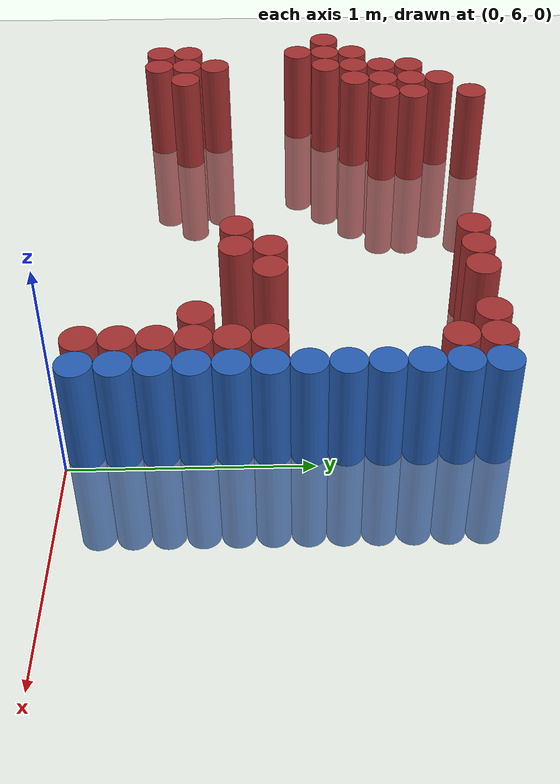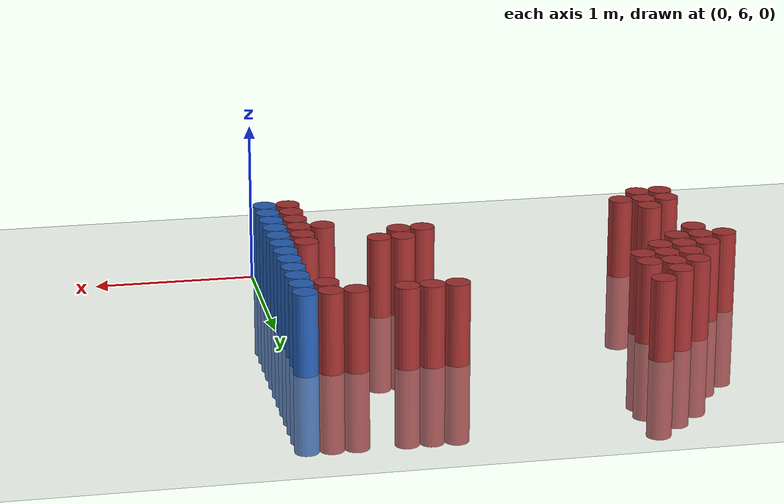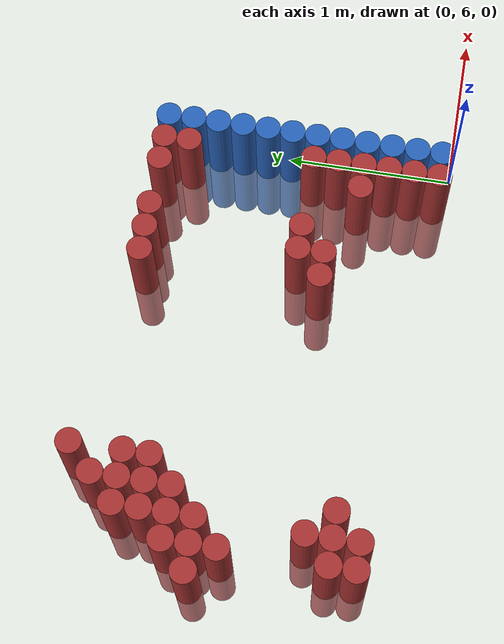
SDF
<sdf version="1.6">
 <world name="default">
  <model name="ground_plane">
   <static>1</static>
   <link name="link">
    <collision name="collision">
     <geometry><plane><normal>0 0 1</normal><size>100 100</size></plane></geometry>
     <surface><friction><ode><mu>100</mu><mu2>50</mu2></ode></friction></surface>
    </collision>
    <visual name="visual">
     <cast_shadows>0</cast_shadows>
     <geometry><plane><normal>0 0 1</normal><size>100 100</size></plane></geometry>
     <material>
      <script><uri>file://media/materials/scripts/gazebo.material</uri><name>Gazebo/Grey</name></script>
     </material>
    </visual>
   </link>
  </model>
  <model name="unit_cylinder_223">
   <static>1</static>
   <pose>-2.775000 7.125000 0.000000 0.000000 0.000000 0.000000</pose>
   <link name="link">
    <inertial>
     <mass>1</mass>
     <inertia><ixx>0.145833</ixx><ixy>0</ixy><ixz>0</ixz><iyy>0.145833</iyy><iyz>0</iyz><izz>0.125</izz></inertia>
    </inertial>
    <collision name="collision">
     <geometry><cylinder><radius>0.075000</radius><length>1</length></cylinder></geometry>
    </collision>
    <visual name="visual">
     <geometry><cylinder><radius>0.075000</radius><length>1</length></cylinder></geometry>
     <material>
      <ambient>0.648000 0.192000 0.192000 1</ambient>
      <diffuse>0.648000 0.192000 0.192000 1</diffuse>
     </material>
     <material>
      <script><name>Gazebo/Grey</name><uri>file://media/materials/scripts/gazebo.material</uri></script>
     </material>
    </visual>
   </link>
  </model>
  <model name="unit_cylinder_224">
   <static>1</static>
   <pose>-2.625000 6.225000 0.000000 0.000000 0.000000 0.000000</pose>
   <link name="link">
    <inertial>
     <mass>1</mass>
     <inertia><ixx>0.145833</ixx><ixy>0</ixy><ixz>0</ixz><iyy>0.145833</iyy><iyz>0</iyz><izz>0.125</izz></inertia>
    </inertial>
    <collision name="collision">
     <geometry><cylinder><radius>0.075000</radius><length>1</length></cylinder></geometry>
    </collision>
    <visual name="visual">
     <geometry><cylinder><radius>0.075000</radius><length>1</length></cylinder></geometry>
     <material>
      <ambient>0.648000 0.192000 0.192000 1</ambient>
      <diffuse>0.648000 0.192000 0.192000 1</diffuse>
     </material>
     <material>
      <script><name>Gazebo/Grey</name><uri>file://media/materials/scripts/gazebo.material</uri></script>
     </material>
    </visual>
   </link>
  </model>
  <model name="unit_cylinder_225">
   <static>1</static>
   <pose>-2.625000 6.375000 0.000000 0.000000 0.000000 0.000000</pose>
   <link name="link">
    <inertial>
     <mass>1</mass>
     <inertia><ixx>0.145833</ixx><ixy>0</ixy><ixz>0</ixz><iyy>0.145833</iyy><iyz>0</iyz><izz>0.125</izz></inertia>
    </inertial>
    <collision name="collision">
     <geometry><cylinder><radius>0.075000</radius><length>1</length></cylinder></geometry>
    </collision>
    <visual name="visual">
     <geometry><cylinder><radius>0.075000</radius><length>1</length></cylinder></geometry>
     <material>
      <ambient>0.648000 0.192000 0.192000 1</ambient>
      <diffuse>0.648000 0.192000 0.192000 1</diffuse>
     </material>
     <material>
      <script><name>Gazebo/Grey</name><uri>file://media/materials/scripts/gazebo.material</uri></script>
     </material>
    </visual>
   </link>
  </model>
  <model name="unit_cylinder_226">
   <static>1</static>
   <pose>-2.625000 6.975000 0.000000 0.000000 0.000000 0.000000</pose>
   <link name="link">
    <inertial>
     <mass>1</mass>
     <inertia><ixx>0.145833</ixx><ixy>0</ixy><ixz>0</ixz><iyy>0.145833</iyy><iyz>0</iyz><izz>0.125</izz></inertia>
    </inertial>
    <collision name="collision">
     <geometry><cylinder><radius>0.075000</radius><length>1</length></cylinder></geometry>
    </collision>
    <visual name="visual">
     <geometry><cylinder><radius>0.075000</radius><length>1</length></cylinder></geometry>
     <material>
      <ambient>0.648000 0.192000 0.192000 1</ambient>
      <diffuse>0.648000 0.192000 0.192000 1</diffuse>
     </material>
     <material>
      <script><name>Gazebo/Grey</name><uri>file://media/materials/scripts/gazebo.material</uri></script>
     </material>
    </visual>
   </link>
  </model>
  <model name="unit_cylinder_227">
   <static>1</static>
   <pose>-2.625000 7.125000 0.000000 0.000000 0.000000 0.000000</pose>
   <link name="link">
    <inertial>
     <mass>1</mass>
     <inertia><ixx>0.145833</ixx><ixy>0</ixy><ixz>0</ixz><iyy>0.145833</iyy><iyz>0</iyz><izz>0.125</izz></inertia>
    </inertial>
    <collision name="collision">
     <geometry><cylinder><radius>0.075000</radius><length>1</length></cylinder></geometry>
    </collision>
    <visual name="visual">
     <geometry><cylinder><radius>0.075000</radius><length>1</length></cylinder></geometry>
     <material>
      <ambient>0.648000 0.192000 0.192000 1</ambient>
      <diffuse>0.648000 0.192000 0.192000 1</diffuse>
     </material>
     <material>
      <script><name>Gazebo/Grey</name><uri>file://media/materials/scripts/gazebo.material</uri></script>
     </material>
    </visual>
   </link>
  </model>
  <model name="unit_cylinder_228">
   <static>1</static>
   <pose>-2.625000 7.275000 0.000000 0.000000 0.000000 0.000000</pose>
   <link name="link">
    <inertial>
     <mass>1</mass>
     <inertia><ixx>0.145833</ixx><ixy>0</ixy><ixz>0</ixz><iyy>0.145833</iyy><iyz>0</iyz><izz>0.125</izz></inertia>
    </inertial>
    <collision name="collision">
     <geometry><cylinder><radius>0.075000</radius><length>1</length></cylinder></geometry>
    </collision>
    <visual name="visual">
     <geometry><cylinder><radius>0.075000</radius><length>1</length></cylinder></geometry>
     <material>
      <ambient>0.648000 0.192000 0.192000 1</ambient>
      <diffuse>0.648000 0.192000 0.192000 1</diffuse>
     </material>
     <material>
      <script><name>Gazebo/Grey</name><uri>file://media/materials/scripts/gazebo.material</uri></script>
     </material>
    </visual>
   </link>
  </model>
  <model name="unit_cylinder_230">
   <static>1</static>
   <pose>-2.475000 6.225000 0.000000 0.000000 0.000000 0.000000</pose>
   <link name="link">
    <inertial>
     <mass>1</mass>
     <inertia><ixx>0.145833</ixx><ixy>0</ixy><ixz>0</ixz><iyy>0.145833</iyy><iyz>0</iyz><izz>0.125</izz></inertia>
    </inertial>
    <collision name="collision">
     <geometry><cylinder><radius>0.075000</radius><length>1</length></cylinder></geometry>
    </collision>
    <visual name="visual">
     <geometry><cylinder><radius>0.075000</radius><length>1</length></cylinder></geometry>
     <material>
      <ambient>0.648000 0.192000 0.192000 1</ambient>
      <diffuse>0.648000 0.192000 0.192000 1</diffuse>
     </material>
     <material>
      <script><name>Gazebo/Grey</name><uri>file://media/materials/scripts/gazebo.material</uri></script>
     </material>
    </visual>
   </link>
  </model>
  <model name="unit_cylinder_231">
   <static>1</static>
   <pose>-2.475000 6.375000 0.000000 0.000000 0.000000 0.000000</pose>
   <link name="link">
    <inertial>
     <mass>1</mass>
     <inertia><ixx>0.145833</ixx><ixy>0</ixy><ixz>0</ixz><iyy>0.145833</iyy><iyz>0</iyz><izz>0.125</izz></inertia>
    </inertial>
    <collision name="collision">
     <geometry><cylinder><radius>0.075000</radius><length>1</length></cylinder></geometry>
    </collision>
    <visual name="visual">
     <geometry><cylinder><radius>0.075000</radius><length>1</length></cylinder></geometry>
     <material>
      <ambient>0.648000 0.192000 0.192000 1</ambient>
      <diffuse>0.648000 0.192000 0.192000 1</diffuse>
     </material>
     <material>
      <script><name>Gazebo/Grey</name><uri>file://media/materials/scripts/gazebo.material</uri></script>
     </material>
    </visual>
   </link>
  </model>
  <model name="unit_cylinder_232">
   <static>1</static>
   <pose>-2.475000 6.525000 0.000000 0.000000 0.000000 0.000000</pose>
   <link name="link">
    <inertial>
     <mass>1</mass>
     <inertia><ixx>0.145833</ixx><ixy>0</ixy><ixz>0</ixz><iyy>0.145833</iyy><iyz>0</iyz><izz>0.125</izz></inertia>
    </inertial>
    <collision name="collision">
     <geometry><cylinder><radius>0.075000</radius><length>1</length></cylinder></geometry>
    </collision>
    <visual name="visual">
     <geometry><cylinder><radius>0.075000</radius><length>1</length></cylinder></geometry>
     <material>
      <ambient>0.648000 0.192000 0.192000 1</ambient>
      <diffuse>0.648000 0.192000 0.192000 1</diffuse>
     </material>
     <material>
      <script><name>Gazebo/Grey</name><uri>file://media/materials/scripts/gazebo.material</uri></script>
     </material>
    </visual>
   </link>
  </model>
  <model name="unit_cylinder_233">
   <static>1</static>
   <pose>-2.475000 7.125000 0.000000 0.000000 0.000000 0.000000</pose>
   <link name="link">
    <inertial>
     <mass>1</mass>
     <inertia><ixx>0.145833</ixx><ixy>0</ixy><ixz>0</ixz><iyy>0.145833</iyy><iyz>0</iyz><izz>0.125</izz></inertia>
    </inertial>
    <collision name="collision">
     <geometry><cylinder><radius>0.075000</radius><length>1</length></cylinder></geometry>
    </collision>
    <visual name="visual">
     <geometry><cylinder><radius>0.075000</radius><length>1</length></cylinder></geometry>
     <material>
      <ambient>0.648000 0.192000 0.192000 1</ambient>
      <diffuse>0.648000 0.192000 0.192000 1</diffuse>
     </material>
     <material>
      <script><name>Gazebo/Grey</name><uri>file://media/materials/scripts/gazebo.material</uri></script>
     </material>
    </visual>
   </link>
  </model>
  <model name="unit_cylinder_234">
   <static>1</static>
   <pose>-2.475000 7.275000 0.000000 0.000000 0.000000 0.000000</pose>
   <link name="link">
    <inertial>
     <mass>1</mass>
     <inertia><ixx>0.145833</ixx><ixy>0</ixy><ixz>0</ixz><iyy>0.145833</iyy><iyz>0</iyz><izz>0.125</izz></inertia>
    </inertial>
    <collision name="collision">
     <geometry><cylinder><radius>0.075000</radius><length>1</length></cylinder></geometry>
    </collision>
    <visual name="visual">
     <geometry><cylinder><radius>0.075000</radius><length>1</length></cylinder></geometry>
     <material>
      <ambient>0.648000 0.192000 0.192000 1</ambient>
      <diffuse>0.648000 0.192000 0.192000 1</diffuse>
     </material>
     <material>
      <script><name>Gazebo/Grey</name><uri>file://media/materials/scripts/gazebo.material</uri></script>
     </material>
    </visual>
   </link>
  </model>
  <model name="unit_cylinder_235">
   <static>1</static>
   <pose>-2.475000 7.425000 0.000000 0.000000 0.000000 0.000000</pose>
   <link name="link">
    <inertial>
     <mass>1</mass>
     <inertia><ixx>0.145833</ixx><ixy>0</ixy><ixz>0</ixz><iyy>0.145833</iyy><iyz>0</iyz><izz>0.125</izz></inertia>
    </inertial>
    <collision name="collision">
     <geometry><cylinder><radius>0.075000</radius><length>1</length></cylinder></geometry>
    </collision>
    <visual name="visual">
     <geometry><cylinder><radius>0.075000</radius><length>1</length></cylinder></geometry>
     <material>
      <ambient>0.648000 0.192000 0.192000 1</ambient>
      <diffuse>0.648000 0.192000 0.192000 1</diffuse>
     </material>
     <material>
      <script><name>Gazebo/Grey</name><uri>file://media/materials/scripts/gazebo.material</uri></script>
     </material>
    </visual>
   </link>
  </model>
  <model name="unit_cylinder_236">
   <static>1</static>
   <pose>-2.475000 7.575000 0.000000 0.000000 0.000000 0.000000</pose>
   <link name="link">
    <inertial>
     <mass>1</mass>
     <inertia><ixx>0.145833</ixx><ixy>0</ixy><ixz>0</ixz><iyy>0.145833</iyy><iyz>0</iyz><izz>0.125</izz></inertia>
    </inertial>
    <collision name="collision">
     <geometry><cylinder><radius>0.075000</radius><length>1</length></cylinder></geometry>
    </collision>
    <visual name="visual">
     <geometry><cylinder><radius>0.075000</radius><length>1</length></cylinder></geometry>
     <material>
      <ambient>0.648000 0.192000 0.192000 1</ambient>
      <diffuse>0.648000 0.192000 0.192000 1</diffuse>
     </material>
     <material>
      <script><name>Gazebo/Grey</name><uri>file://media/materials/scripts/gazebo.material</uri></script>
     </material>
    </visual>
   </link>
  </model>
  <model name="unit_cylinder_239">
   <static>1</static>
   <pose>-2.325000 6.375000 0.000000 0.000000 0.000000 0.000000</pose>
   <link name="link">
    <inertial>
     <mass>1</mass>
     <inertia><ixx>0.145833</ixx><ixy>0</ixy><ixz>0</ixz><iyy>0.145833</iyy><iyz>0</iyz><izz>0.125</izz></inertia>
    </inertial>
    <collision name="collision">
     <geometry><cylinder><radius>0.075000</radius><length>1</length></cylinder></geometry>
    </collision>
    <visual name="visual">
     <geometry><cylinder><radius>0.075000</radius><length>1</length></cylinder></geometry>
     <material>
      <ambient>0.648000 0.192000 0.192000 1</ambient>
      <diffuse>0.648000 0.192000 0.192000 1</diffuse>
     </material>
     <material>
      <script><name>Gazebo/Grey</name><uri>file://media/materials/scripts/gazebo.material</uri></script>
     </material>
    </visual>
   </link>
  </model>
  <model name="unit_cylinder_240">
   <static>1</static>
   <pose>-2.325000 7.275000 0.000000 0.000000 0.000000 0.000000</pose>
   <link name="link">
    <inertial>
     <mass>1</mass>
     <inertia><ixx>0.145833</ixx><ixy>0</ixy><ixz>0</ixz><iyy>0.145833</iyy><iyz>0</iyz><izz>0.125</izz></inertia>
    </inertial>
    <collision name="collision">
     <geometry><cylinder><radius>0.075000</radius><length>1</length></cylinder></geometry>
    </collision>
    <visual name="visual">
     <geometry><cylinder><radius>0.075000</radius><length>1</length></cylinder></geometry>
     <material>
      <ambient>0.648000 0.192000 0.192000 1</ambient>
      <diffuse>0.648000 0.192000 0.192000 1</diffuse>
     </material>
     <material>
      <script><name>Gazebo/Grey</name><uri>file://media/materials/scripts/gazebo.material</uri></script>
     </material>
    </visual>
   </link>
  </model>
  <model name="unit_cylinder_241">
   <static>1</static>
   <pose>-2.325000 7.425000 0.000000 0.000000 0.000000 0.000000</pose>
   <link name="link">
    <inertial>
     <mass>1</mass>
     <inertia><ixx>0.145833</ixx><ixy>0</ixy><ixz>0</ixz><iyy>0.145833</iyy><iyz>0</iyz><izz>0.125</izz></inertia>
    </inertial>
    <collision name="collision">
     <geometry><cylinder><radius>0.075000</radius><length>1</length></cylinder></geometry>
    </collision>
    <visual name="visual">
     <geometry><cylinder><radius>0.075000</radius><length>1</length></cylinder></geometry>
     <material>
      <ambient>0.648000 0.192000 0.192000 1</ambient>
      <diffuse>0.648000 0.192000 0.192000 1</diffuse>
     </material>
     <material>
      <script><name>Gazebo/Grey</name><uri>file://media/materials/scripts/gazebo.material</uri></script>
     </material>
    </visual>
   </link>
  </model>
  <model name="unit_cylinder_242">
   <static>1</static>
   <pose>-2.325000 7.575000 0.000000 0.000000 0.000000 0.000000</pose>
   <link name="link">
    <inertial>
     <mass>1</mass>
     <inertia><ixx>0.145833</ixx><ixy>0</ixy><ixz>0</ixz><iyy>0.145833</iyy><iyz>0</iyz><izz>0.125</izz></inertia>
    </inertial>
    <collision name="collision">
     <geometry><cylinder><radius>0.075000</radius><length>1</length></cylinder></geometry>
    </collision>
    <visual name="visual">
     <geometry><cylinder><radius>0.075000</radius><length>1</length></cylinder></geometry>
     <material>
      <ambient>0.648000 0.192000 0.192000 1</ambient>
      <diffuse>0.648000 0.192000 0.192000 1</diffuse>
     </material>
     <material>
      <script><name>Gazebo/Grey</name><uri>file://media/materials/scripts/gazebo.material</uri></script>
     </material>
    </visual>
   </link>
  </model>
  <model name="unit_cylinder_243">
   <static>1</static>
   <pose>-2.325000 7.725000 0.000000 0.000000 0.000000 0.000000</pose>
   <link name="link">
    <inertial>
     <mass>1</mass>
     <inertia><ixx>0.145833</ixx><ixy>0</ixy><ixz>0</ixz><iyy>0.145833</iyy><iyz>0</iyz><izz>0.125</izz></inertia>
    </inertial>
    <collision name="collision">
     <geometry><cylinder><radius>0.075000</radius><length>1</length></cylinder></geometry>
    </collision>
    <visual name="visual">
     <geometry><cylinder><radius>0.075000</radius><length>1</length></cylinder></geometry>
     <material>
      <ambient>0.648000 0.192000 0.192000 1</ambient>
      <diffuse>0.648000 0.192000 0.192000 1</diffuse>
     </material>
     <material>
      <script><name>Gazebo/Grey</name><uri>file://media/materials/scripts/gazebo.material</uri></script>
     </material>
    </visual>
   </link>
  </model>
  <model name="unit_cylinder_248">
   <static>1</static>
   <pose>-2.175000 7.425000 0.000000 0.000000 0.000000 0.000000</pose>
   <link name="link">
    <inertial>
     <mass>1</mass>
     <inertia><ixx>0.145833</ixx><ixy>0</ixy><ixz>0</ixz><iyy>0.145833</iyy><iyz>0</iyz><izz>0.125</izz></inertia>
    </inertial>
    <collision name="collision">
     <geometry><cylinder><radius>0.075000</radius><length>1</length></cylinder></geometry>
    </collision>
    <visual name="visual">
     <geometry><cylinder><radius>0.075000</radius><length>1</length></cylinder></geometry>
     <material>
      <ambient>0.648000 0.192000 0.192000 1</ambient>
      <diffuse>0.648000 0.192000 0.192000 1</diffuse>
     </material>
     <material>
      <script><name>Gazebo/Grey</name><uri>file://media/materials/scripts/gazebo.material</uri></script>
     </material>
    </visual>
   </link>
  </model>
  <model name="unit_cylinder_249">
   <static>1</static>
   <pose>-2.175000 7.575000 0.000000 0.000000 0.000000 0.000000</pose>
   <link name="link">
    <inertial>
     <mass>1</mass>
     <inertia><ixx>0.145833</ixx><ixy>0</ixy><ixz>0</ixz><iyy>0.145833</iyy><iyz>0</iyz><izz>0.125</izz></inertia>
    </inertial>
    <collision name="collision">
     <geometry><cylinder><radius>0.075000</radius><length>1</length></cylinder></geometry>
    </collision>
    <visual name="visual">
     <geometry><cylinder><radius>0.075000</radius><length>1</length></cylinder></geometry>
     <material>
      <ambient>0.648000 0.192000 0.192000 1</ambient>
      <diffuse>0.648000 0.192000 0.192000 1</diffuse>
     </material>
     <material>
      <script><name>Gazebo/Grey</name><uri>file://media/materials/scripts/gazebo.material</uri></script>
     </material>
    </visual>
   </link>
  </model>
  <model name="unit_cylinder_250">
   <static>1</static>
   <pose>-2.175000 7.875000 0.000000 0.000000 0.000000 0.000000</pose>
   <link name="link">
    <inertial>
     <mass>1</mass>
     <inertia><ixx>0.145833</ixx><ixy>0</ixy><ixz>0</ixz><iyy>0.145833</iyy><iyz>0</iyz><izz>0.125</izz></inertia>
    </inertial>
    <collision name="collision">
     <geometry><cylinder><radius>0.075000</radius><length>1</length></cylinder></geometry>
    </collision>
    <visual name="visual">
     <geometry><cylinder><radius>0.075000</radius><length>1</length></cylinder></geometry>
     <material>
      <ambient>0.648000 0.192000 0.192000 1</ambient>
      <diffuse>0.648000 0.192000 0.192000 1</diffuse>
     </material>
     <material>
      <script><name>Gazebo/Grey</name><uri>file://media/materials/scripts/gazebo.material</uri></script>
     </material>
    </visual>
   </link>
  </model>
  <model name="unit_cylinder_271">
   <static>1</static>
   <pose>-0.975000 6.675000 0.000000 0.000000 0.000000 0.000000</pose>
   <link name="link">
    <inertial>
     <mass>1</mass>
     <inertia><ixx>0.145833</ixx><ixy>0</ixy><ixz>0</ixz><iyy>0.145833</iyy><iyz>0</iyz><izz>0.125</izz></inertia>
    </inertial>
    <collision name="collision">
     <geometry><cylinder><radius>0.075000</radius><length>1</length></cylinder></geometry>
    </collision>
    <visual name="visual">
     <geometry><cylinder><radius>0.075000</radius><length>1</length></cylinder></geometry>
     <material>
      <ambient>0.648000 0.192000 0.192000 1</ambient>
      <diffuse>0.648000 0.192000 0.192000 1</diffuse>
     </material>
     <material>
      <script><name>Gazebo/Grey</name><uri>file://media/materials/scripts/gazebo.material</uri></script>
     </material>
    </visual>
   </link>
  </model>
  <model name="unit_cylinder_272">
   <static>1</static>
   <pose>-0.975000 7.725000 0.000000 0.000000 0.000000 0.000000</pose>
   <link name="link">
    <inertial>
     <mass>1</mass>
     <inertia><ixx>0.145833</ixx><ixy>0</ixy><ixz>0</ixz><iyy>0.145833</iyy><iyz>0</iyz><izz>0.125</izz></inertia>
    </inertial>
    <collision name="collision">
     <geometry><cylinder><radius>0.075000</radius><length>1</length></cylinder></geometry>
    </collision>
    <visual name="visual">
     <geometry><cylinder><radius>0.075000</radius><length>1</length></cylinder></geometry>
     <material>
      <ambient>0.648000 0.192000 0.192000 1</ambient>
      <diffuse>0.648000 0.192000 0.192000 1</diffuse>
     </material>
     <material>
      <script><name>Gazebo/Grey</name><uri>file://media/materials/scripts/gazebo.material</uri></script>
     </material>
    </visual>
   </link>
  </model>
  <model name="unit_cylinder_276">
   <static>1</static>
   <pose>-0.825000 6.675000 0.000000 0.000000 0.000000 0.000000</pose>
   <link name="link">
    <inertial>
     <mass>1</mass>
     <inertia><ixx>0.145833</ixx><ixy>0</ixy><ixz>0</ixz><iyy>0.145833</iyy><iyz>0</iyz><izz>0.125</izz></inertia>
    </inertial>
    <collision name="collision">
     <geometry><cylinder><radius>0.075000</radius><length>1</length></cylinder></geometry>
    </collision>
    <visual name="visual">
     <geometry><cylinder><radius>0.075000</radius><length>1</length></cylinder></geometry>
     <material>
      <ambient>0.648000 0.192000 0.192000 1</ambient>
      <diffuse>0.648000 0.192000 0.192000 1</diffuse>
     </material>
     <material>
      <script><name>Gazebo/Grey</name><uri>file://media/materials/scripts/gazebo.material</uri></script>
     </material>
    </visual>
   </link>
  </model>
  <model name="unit_cylinder_277">
   <static>1</static>
   <pose>-0.825000 6.825000 0.000000 0.000000 0.000000 0.000000</pose>
   <link name="link">
    <inertial>
     <mass>1</mass>
     <inertia><ixx>0.145833</ixx><ixy>0</ixy><ixz>0</ixz><iyy>0.145833</iyy><iyz>0</iyz><izz>0.125</izz></inertia>
    </inertial>
    <collision name="collision">
     <geometry><cylinder><radius>0.075000</radius><length>1</length></cylinder></geometry>
    </collision>
    <visual name="visual">
     <geometry><cylinder><radius>0.075000</radius><length>1</length></cylinder></geometry>
     <material>
      <ambient>0.648000 0.192000 0.192000 1</ambient>
      <diffuse>0.648000 0.192000 0.192000 1</diffuse>
     </material>
     <material>
      <script><name>Gazebo/Grey</name><uri>file://media/materials/scripts/gazebo.material</uri></script>
     </material>
    </visual>
   </link>
  </model>
  <model name="unit_cylinder_278">
   <static>1</static>
   <pose>-0.825000 7.725000 0.000000 0.000000 0.000000 0.000000</pose>
   <link name="link">
    <inertial>
     <mass>1</mass>
     <inertia><ixx>0.145833</ixx><ixy>0</ixy><ixz>0</ixz><iyy>0.145833</iyy><iyz>0</iyz><izz>0.125</izz></inertia>
    </inertial>
    <collision name="collision">
     <geometry><cylinder><radius>0.075000</radius><length>1</length></cylinder></geometry>
    </collision>
    <visual name="visual">
     <geometry><cylinder><radius>0.075000</radius><length>1</length></cylinder></geometry>
     <material>
      <ambient>0.648000 0.192000 0.192000 1</ambient>
      <diffuse>0.648000 0.192000 0.192000 1</diffuse>
     </material>
     <material>
      <script><name>Gazebo/Grey</name><uri>file://media/materials/scripts/gazebo.material</uri></script>
     </material>
    </visual>
   </link>
  </model>
  <model name="unit_cylinder_282">
   <static>1</static>
   <pose>-0.675000 6.825000 0.000000 0.000000 0.000000 0.000000</pose>
   <link name="link">
    <inertial>
     <mass>1</mass>
     <inertia><ixx>0.145833</ixx><ixy>0</ixy><ixz>0</ixz><iyy>0.145833</iyy><iyz>0</iyz><izz>0.125</izz></inertia>
    </inertial>
    <collision name="collision">
     <geometry><cylinder><radius>0.075000</radius><length>1</length></cylinder></geometry>
    </collision>
    <visual name="visual">
     <geometry><cylinder><radius>0.075000</radius><length>1</length></cylinder></geometry>
     <material>
      <ambient>0.648000 0.192000 0.192000 1</ambient>
      <diffuse>0.648000 0.192000 0.192000 1</diffuse>
     </material>
     <material>
      <script><name>Gazebo/Grey</name><uri>file://media/materials/scripts/gazebo.material</uri></script>
     </material>
    </visual>
   </link>
  </model>
  <model name="unit_cylinder_283">
   <static>1</static>
   <pose>-0.675000 7.725000 0.000000 0.000000 0.000000 0.000000</pose>
   <link name="link">
    <inertial>
     <mass>1</mass>
     <inertia><ixx>0.145833</ixx><ixy>0</ixy><ixz>0</ixz><iyy>0.145833</iyy><iyz>0</iyz><izz>0.125</izz></inertia>
    </inertial>
    <collision name="collision">
     <geometry><cylinder><radius>0.075000</radius><length>1</length></cylinder></geometry>
    </collision>
    <visual name="visual">
     <geometry><cylinder><radius>0.075000</radius><length>1</length></cylinder></geometry>
     <material>
      <ambient>0.648000 0.192000 0.192000 1</ambient>
      <diffuse>0.648000 0.192000 0.192000 1</diffuse>
     </material>
     <material>
      <script><name>Gazebo/Grey</name><uri>file://media/materials/scripts/gazebo.material</uri></script>
     </material>
    </visual>
   </link>
  </model>
  <model name="unit_cylinder_299">
   <static>1</static>
   <pose>-0.375000 6.525000 0.000000 0.000000 0.000000 0.000000</pose>
   <link name="link">
    <inertial>
     <mass>1</mass>
     <inertia><ixx>0.145833</ixx><ixy>0</ixy><ixz>0</ixz><iyy>0.145833</iyy><iyz>0</iyz><izz>0.125</izz></inertia>
    </inertial>
    <collision name="collision">
     <geometry><cylinder><radius>0.075000</radius><length>1</length></cylinder></geometry>
    </collision>
    <visual name="visual">
     <geometry><cylinder><radius>0.075000</radius><length>1</length></cylinder></geometry>
     <material>
      <ambient>0.648000 0.192000 0.192000 1</ambient>
      <diffuse>0.648000 0.192000 0.192000 1</diffuse>
     </material>
     <material>
      <script><name>Gazebo/Grey</name><uri>file://media/materials/scripts/gazebo.material</uri></script>
     </material>
    </visual>
   </link>
  </model>
  <model name="unit_cylinder_300">
   <static>1</static>
   <pose>-0.375000 7.725000 0.000000 0.000000 0.000000 0.000000</pose>
   <link name="link">
    <inertial>
     <mass>1</mass>
     <inertia><ixx>0.145833</ixx><ixy>0</ixy><ixz>0</ixz><iyy>0.145833</iyy><iyz>0</iyz><izz>0.125</izz></inertia>
    </inertial>
    <collision name="collision">
     <geometry><cylinder><radius>0.075000</radius><length>1</length></cylinder></geometry>
    </collision>
    <visual name="visual">
     <geometry><cylinder><radius>0.075000</radius><length>1</length></cylinder></geometry>
     <material>
      <ambient>0.648000 0.192000 0.192000 1</ambient>
      <diffuse>0.648000 0.192000 0.192000 1</diffuse>
     </material>
     <material>
      <script><name>Gazebo/Grey</name><uri>file://media/materials/scripts/gazebo.material</uri></script>
     </material>
    </visual>
   </link>
  </model>
  <model name="unit_cylinder_306">
   <static>1</static>
   <pose>-0.225000 6.075000 0.000000 0.000000 0.000000 0.000000</pose>
   <link name="link">
    <inertial>
     <mass>1</mass>
     <inertia><ixx>0.145833</ixx><ixy>0</ixy><ixz>0</ixz><iyy>0.145833</iyy><iyz>0</iyz><izz>0.125</izz></inertia>
    </inertial>
    <collision name="collision">
     <geometry><cylinder><radius>0.075000</radius><length>1</length></cylinder></geometry>
    </collision>
    <visual name="visual">
     <geometry><cylinder><radius>0.075000</radius><length>1</length></cylinder></geometry>
     <material>
      <ambient>0.648000 0.192000 0.192000 1</ambient>
      <diffuse>0.648000 0.192000 0.192000 1</diffuse>
     </material>
     <material>
      <script><name>Gazebo/Grey</name><uri>file://media/materials/scripts/gazebo.material</uri></script>
     </material>
    </visual>
   </link>
  </model>
  <model name="unit_cylinder_307">
   <static>1</static>
   <pose>-0.225000 6.225000 0.000000 0.000000 0.000000 0.000000</pose>
   <link name="link">
    <inertial>
     <mass>1</mass>
     <inertia><ixx>0.145833</ixx><ixy>0</ixy><ixz>0</ixz><iyy>0.145833</iyy><iyz>0</iyz><izz>0.125</izz></inertia>
    </inertial>
    <collision name="collision">
     <geometry><cylinder><radius>0.075000</radius><length>1</length></cylinder></geometry>
    </collision>
    <visual name="visual">
     <geometry><cylinder><radius>0.075000</radius><length>1</length></cylinder></geometry>
     <material>
      <ambient>0.648000 0.192000 0.192000 1</ambient>
      <diffuse>0.648000 0.192000 0.192000 1</diffuse>
     </material>
     <material>
      <script><name>Gazebo/Grey</name><uri>file://media/materials/scripts/gazebo.material</uri></script>
     </material>
    </visual>
   </link>
  </model>
  <model name="unit_cylinder_308">
   <static>1</static>
   <pose>-0.225000 6.375000 0.000000 0.000000 0.000000 0.000000</pose>
   <link name="link">
    <inertial>
     <mass>1</mass>
     <inertia><ixx>0.145833</ixx><ixy>0</ixy><ixz>0</ixz><iyy>0.145833</iyy><iyz>0</iyz><izz>0.125</izz></inertia>
    </inertial>
    <collision name="collision">
     <geometry><cylinder><radius>0.075000</radius><length>1</length></cylinder></geometry>
    </collision>
    <visual name="visual">
     <geometry><cylinder><radius>0.075000</radius><length>1</length></cylinder></geometry>
     <material>
      <ambient>0.648000 0.192000 0.192000 1</ambient>
      <diffuse>0.648000 0.192000 0.192000 1</diffuse>
     </material>
     <material>
      <script><name>Gazebo/Grey</name><uri>file://media/materials/scripts/gazebo.material</uri></script>
     </material>
    </visual>
   </link>
  </model>
  <model name="unit_cylinder_309">
   <static>1</static>
   <pose>-0.225000 6.525000 0.000000 0.000000 0.000000 0.000000</pose>
   <link name="link">
    <inertial>
     <mass>1</mass>
     <inertia><ixx>0.145833</ixx><ixy>0</ixy><ixz>0</ixz><iyy>0.145833</iyy><iyz>0</iyz><izz>0.125</izz></inertia>
    </inertial>
    <collision name="collision">
     <geometry><cylinder><radius>0.075000</radius><length>1</length></cylinder></geometry>
    </collision>
    <visual name="visual">
     <geometry><cylinder><radius>0.075000</radius><length>1</length></cylinder></geometry>
     <material>
      <ambient>0.648000 0.192000 0.192000 1</ambient>
      <diffuse>0.648000 0.192000 0.192000 1</diffuse>
     </material>
     <material>
      <script><name>Gazebo/Grey</name><uri>file://media/materials/scripts/gazebo.material</uri></script>
     </material>
    </visual>
   </link>
  </model>
  <model name="unit_cylinder_310">
   <static>1</static>
   <pose>-0.225000 6.675000 0.000000 0.000000 0.000000 0.000000</pose>
   <link name="link">
    <inertial>
     <mass>1</mass>
     <inertia><ixx>0.145833</ixx><ixy>0</ixy><ixz>0</ixz><iyy>0.145833</iyy><iyz>0</iyz><izz>0.125</izz></inertia>
    </inertial>
    <collision name="collision">
     <geometry><cylinder><radius>0.075000</radius><length>1</length></cylinder></geometry>
    </collision>
    <visual name="visual">
     <geometry><cylinder><radius>0.075000</radius><length>1</length></cylinder></geometry>
     <material>
      <ambient>0.648000 0.192000 0.192000 1</ambient>
      <diffuse>0.648000 0.192000 0.192000 1</diffuse>
     </material>
     <material>
      <script><name>Gazebo/Grey</name><uri>file://media/materials/scripts/gazebo.material</uri></script>
     </material>
    </visual>
   </link>
  </model>
  <model name="unit_cylinder_311">
   <static>1</static>
   <pose>-0.225000 6.825000 0.000000 0.000000 0.000000 0.000000</pose>
   <link name="link">
    <inertial>
     <mass>1</mass>
     <inertia><ixx>0.145833</ixx><ixy>0</ixy><ixz>0</ixz><iyy>0.145833</iyy><iyz>0</iyz><izz>0.125</izz></inertia>
    </inertial>
    <collision name="collision">
     <geometry><cylinder><radius>0.075000</radius><length>1</length></cylinder></geometry>
    </collision>
    <visual name="visual">
     <geometry><cylinder><radius>0.075000</radius><length>1</length></cylinder></geometry>
     <material>
      <ambient>0.648000 0.192000 0.192000 1</ambient>
      <diffuse>0.648000 0.192000 0.192000 1</diffuse>
     </material>
     <material>
      <script><name>Gazebo/Grey</name><uri>file://media/materials/scripts/gazebo.material</uri></script>
     </material>
    </visual>
   </link>
  </model>
  <model name="unit_cylinder_312">
   <static>1</static>
   <pose>-0.225000 7.575000 0.000000 0.000000 0.000000 0.000000</pose>
   <link name="link">
    <inertial>
     <mass>1</mass>
     <inertia><ixx>0.145833</ixx><ixy>0</ixy><ixz>0</ixz><iyy>0.145833</iyy><iyz>0</iyz><izz>0.125</izz></inertia>
    </inertial>
    <collision name="collision">
     <geometry><cylinder><radius>0.075000</radius><length>1</length></cylinder></geometry>
    </collision>
    <visual name="visual">
     <geometry><cylinder><radius>0.075000</radius><length>1</length></cylinder></geometry>
     <material>
      <ambient>0.648000 0.192000 0.192000 1</ambient>
      <diffuse>0.648000 0.192000 0.192000 1</diffuse>
     </material>
     <material>
      <script><name>Gazebo/Grey</name><uri>file://media/materials/scripts/gazebo.material</uri></script>
     </material>
    </visual>
   </link>
  </model>
  <model name="unit_cylinder_313">
   <static>1</static>
   <pose>-0.225000 7.725000 0.000000 0.000000 0.000000 0.000000</pose>
   <link name="link">
    <inertial>
     <mass>1</mass>
     <inertia><ixx>0.145833</ixx><ixy>0</ixy><ixz>0</ixz><iyy>0.145833</iyy><iyz>0</iyz><izz>0.125</izz></inertia>
    </inertial>
    <collision name="collision">
     <geometry><cylinder><radius>0.075000</radius><length>1</length></cylinder></geometry>
    </collision>
    <visual name="visual">
     <geometry><cylinder><radius>0.075000</radius><length>1</length></cylinder></geometry>
     <material>
      <ambient>0.648000 0.192000 0.192000 1</ambient>
      <diffuse>0.648000 0.192000 0.192000 1</diffuse>
     </material>
     <material>
      <script><name>Gazebo/Grey</name><uri>file://media/materials/scripts/gazebo.material</uri></script>
     </material>
    </visual>
   </link>
  </model>
  <model name="unit_cylinder_324">
   <static>1</static>
   <pose>-0.075000 6.075000 0.000000 0.000000 0.000000 0.000000</pose>
   <link name="link">
    <inertial>
     <mass>1</mass>
     <inertia><ixx>0.145833</ixx><ixy>0</ixy><ixz>0</ixz><iyy>0.145833</iyy><iyz>0</iyz><izz>0.125</izz></inertia>
    </inertial>
    <collision name="collision">
     <geometry><cylinder><radius>0.075000</radius><length>1</length></cylinder></geometry>
    </collision>
    <visual name="visual">
     <geometry><cylinder><radius>0.075000</radius><length>1</length></cylinder></geometry>
     <material>
      <ambient>0.152000 0.379000 0.720000 1</ambient>
      <diffuse>0.152000 0.379000 0.720000 1</diffuse>
     </material>
     <material>
      <script><name>Gazebo/Grey</name><uri>file://media/materials/scripts/gazebo.material</uri></script>
     </material>
    </visual>
   </link>
  </model>
  <model name="unit_cylinder_325">
   <static>1</static>
   <pose>-0.075000 6.225000 0.000000 0.000000 0.000000 0.000000</pose>
   <link name="link">
    <inertial>
     <mass>1</mass>
     <inertia><ixx>0.145833</ixx><ixy>0</ixy><ixz>0</ixz><iyy>0.145833</iyy><iyz>0</iyz><izz>0.125</izz></inertia>
    </inertial>
    <collision name="collision">
     <geometry><cylinder><radius>0.075000</radius><length>1</length></cylinder></geometry>
    </collision>
    <visual name="visual">
     <geometry><cylinder><radius>0.075000</radius><length>1</length></cylinder></geometry>
     <material>
      <ambient>0.152000 0.379000 0.720000 1</ambient>
      <diffuse>0.152000 0.379000 0.720000 1</diffuse>
     </material>
     <material>
      <script><name>Gazebo/Grey</name><uri>file://media/materials/scripts/gazebo.material</uri></script>
     </material>
    </visual>
   </link>
  </model>
  <model name="unit_cylinder_326">
   <static>1</static>
   <pose>-0.075000 6.375000 0.000000 0.000000 0.000000 0.000000</pose>
   <link name="link">
    <inertial>
     <mass>1</mass>
     <inertia><ixx>0.145833</ixx><ixy>0</ixy><ixz>0</ixz><iyy>0.145833</iyy><iyz>0</iyz><izz>0.125</izz></inertia>
    </inertial>
    <collision name="collision">
     <geometry><cylinder><radius>0.075000</radius><length>1</length></cylinder></geometry>
    </collision>
    <visual name="visual">
     <geometry><cylinder><radius>0.075000</radius><length>1</length></cylinder></geometry>
     <material>
      <ambient>0.152000 0.379000 0.720000 1</ambient>
      <diffuse>0.152000 0.379000 0.720000 1</diffuse>
     </material>
     <material>
      <script><name>Gazebo/Grey</name><uri>file://media/materials/scripts/gazebo.material</uri></script>
     </material>
    </visual>
   </link>
  </model>
  <model name="unit_cylinder_327">
   <static>1</static>
   <pose>-0.075000 6.525000 0.000000 0.000000 0.000000 0.000000</pose>
   <link name="link">
    <inertial>
     <mass>1</mass>
     <inertia><ixx>0.145833</ixx><ixy>0</ixy><ixz>0</ixz><iyy>0.145833</iyy><iyz>0</iyz><izz>0.125</izz></inertia>
    </inertial>
    <collision name="collision">
     <geometry><cylinder><radius>0.075000</radius><length>1</length></cylinder></geometry>
    </collision>
    <visual name="visual">
     <geometry><cylinder><radius>0.075000</radius><length>1</length></cylinder></geometry>
     <material>
      <ambient>0.152000 0.379000 0.720000 1</ambient>
      <diffuse>0.152000 0.379000 0.720000 1</diffuse>
     </material>
     <material>
      <script><name>Gazebo/Grey</name><uri>file://media/materials/scripts/gazebo.material</uri></script>
     </material>
    </visual>
   </link>
  </model>
  <model name="unit_cylinder_328">
   <static>1</static>
   <pose>-0.075000 6.675000 0.000000 0.000000 0.000000 0.000000</pose>
   <link name="link">
    <inertial>
     <mass>1</mass>
     <inertia><ixx>0.145833</ixx><ixy>0</ixy><ixz>0</ixz><iyy>0.145833</iyy><iyz>0</iyz><izz>0.125</izz></inertia>
    </inertial>
    <collision name="collision">
     <geometry><cylinder><radius>0.075000</radius><length>1</length></cylinder></geometry>
    </collision>
    <visual name="visual">
     <geometry><cylinder><radius>0.075000</radius><length>1</length></cylinder></geometry>
     <material>
      <ambient>0.152000 0.379000 0.720000 1</ambient>
      <diffuse>0.152000 0.379000 0.720000 1</diffuse>
     </material>
     <material>
      <script><name>Gazebo/Grey</name><uri>file://media/materials/scripts/gazebo.material</uri></script>
     </material>
    </visual>
   </link>
  </model>
  <model name="unit_cylinder_329">
   <static>1</static>
   <pose>-0.075000 6.825000 0.000000 0.000000 0.000000 0.000000</pose>
   <link name="link">
    <inertial>
     <mass>1</mass>
     <inertia><ixx>0.145833</ixx><ixy>0</ixy><ixz>0</ixz><iyy>0.145833</iyy><iyz>0</iyz><izz>0.125</izz></inertia>
    </inertial>
    <collision name="collision">
     <geometry><cylinder><radius>0.075000</radius><length>1</length></cylinder></geometry>
    </collision>
    <visual name="visual">
     <geometry><cylinder><radius>0.075000</radius><length>1</length></cylinder></geometry>
     <material>
      <ambient>0.152000 0.379000 0.720000 1</ambient>
      <diffuse>0.152000 0.379000 0.720000 1</diffuse>
     </material>
     <material>
      <script><name>Gazebo/Grey</name><uri>file://media/materials/scripts/gazebo.material</uri></script>
     </material>
    </visual>
   </link>
  </model>
  <model name="unit_cylinder_330">
   <static>1</static>
   <pose>-0.075000 6.975000 0.000000 0.000000 0.000000 0.000000</pose>
   <link name="link">
    <inertial>
     <mass>1</mass>
     <inertia><ixx>0.145833</ixx><ixy>0</ixy><ixz>0</ixz><iyy>0.145833</iyy><iyz>0</iyz><izz>0.125</izz></inertia>
    </inertial>
    <collision name="collision">
     <geometry><cylinder><radius>0.075000</radius><length>1</length></cylinder></geometry>
    </collision>
    <visual name="visual">
     <geometry><cylinder><radius>0.075000</radius><length>1</length></cylinder></geometry>
     <material>
      <ambient>0.152000 0.379000 0.720000 1</ambient>
      <diffuse>0.152000 0.379000 0.720000 1</diffuse>
     </material>
     <material>
      <script><name>Gazebo/Grey</name><uri>file://media/materials/scripts/gazebo.material</uri></script>
     </material>
    </visual>
   </link>
  </model>
  <model name="unit_cylinder_331">
   <static>1</static>
   <pose>-0.075000 7.125000 0.000000 0.000000 0.000000 0.000000</pose>
   <link name="link">
    <inertial>
     <mass>1</mass>
     <inertia><ixx>0.145833</ixx><ixy>0</ixy><ixz>0</ixz><iyy>0.145833</iyy><iyz>0</iyz><izz>0.125</izz></inertia>
    </inertial>
    <collision name="collision">
     <geometry><cylinder><radius>0.075000</radius><length>1</length></cylinder></geometry>
    </collision>
    <visual name="visual">
     <geometry><cylinder><radius>0.075000</radius><length>1</length></cylinder></geometry>
     <material>
      <ambient>0.152000 0.379000 0.720000 1</ambient>
      <diffuse>0.152000 0.379000 0.720000 1</diffuse>
     </material>
     <material>
      <script><name>Gazebo/Grey</name><uri>file://media/materials/scripts/gazebo.material</uri></script>
     </material>
    </visual>
   </link>
  </model>
  <model name="unit_cylinder_332">
   <static>1</static>
   <pose>-0.075000 7.275000 0.000000 0.000000 0.000000 0.000000</pose>
   <link name="link">
    <inertial>
     <mass>1</mass>
     <inertia><ixx>0.145833</ixx><ixy>0</ixy><ixz>0</ixz><iyy>0.145833</iyy><iyz>0</iyz><izz>0.125</izz></inertia>
    </inertial>
    <collision name="collision">
     <geometry><cylinder><radius>0.075000</radius><length>1</length></cylinder></geometry>
    </collision>
    <visual name="visual">
     <geometry><cylinder><radius>0.075000</radius><length>1</length></cylinder></geometry>
     <material>
      <ambient>0.152000 0.379000 0.720000 1</ambient>
      <diffuse>0.152000 0.379000 0.720000 1</diffuse>
     </material>
     <material>
      <script><name>Gazebo/Grey</name><uri>file://media/materials/scripts/gazebo.material</uri></script>
     </material>
    </visual>
   </link>
  </model>
  <model name="unit_cylinder_333">
   <static>1</static>
   <pose>-0.075000 7.425000 0.000000 0.000000 0.000000 0.000000</pose>
   <link name="link">
    <inertial>
     <mass>1</mass>
     <inertia><ixx>0.145833</ixx><ixy>0</ixy><ixz>0</ixz><iyy>0.145833</iyy><iyz>0</iyz><izz>0.125</izz></inertia>
    </inertial>
    <collision name="collision">
     <geometry><cylinder><radius>0.075000</radius><length>1</length></cylinder></geometry>
    </collision>
    <visual name="visual">
     <geometry><cylinder><radius>0.075000</radius><length>1</length></cylinder></geometry>
     <material>
      <ambient>0.152000 0.379000 0.720000 1</ambient>
      <diffuse>0.152000 0.379000 0.720000 1</diffuse>
     </material>
     <material>
      <script><name>Gazebo/Grey</name><uri>file://media/materials/scripts/gazebo.material</uri></script>
     </material>
    </visual>
   </link>
  </model>
  <model name="unit_cylinder_334">
   <static>1</static>
   <pose>-0.075000 7.575000 0.000000 0.000000 0.000000 0.000000</pose>
   <link name="link">
    <inertial>
     <mass>1</mass>
     <inertia><ixx>0.145833</ixx><ixy>0</ixy><ixz>0</ixz><iyy>0.145833</iyy><iyz>0</iyz><izz>0.125</izz></inertia>
    </inertial>
    <collision name="collision">
     <geometry><cylinder><radius>0.075000</radius><length>1</length></cylinder></geometry>
    </collision>
    <visual name="visual">
     <geometry><cylinder><radius>0.075000</radius><length>1</length></cylinder></geometry>
     <material>
      <ambient>0.152000 0.379000 0.720000 1</ambient>
      <diffuse>0.152000 0.379000 0.720000 1</diffuse>
     </material>
     <material>
      <script><name>Gazebo/Grey</name><uri>file://media/materials/scripts/gazebo.material</uri></script>
     </material>
    </visual>
   </link>
  </model>
  <model name="unit_cylinder_335">
   <static>1</static>
   <pose>-0.075000 7.725000 0.000000 0.000000 0.000000 0.000000</pose>
   <link name="link">
    <inertial>
     <mass>1</mass>
     <inertia><ixx>0.145833</ixx><ixy>0</ixy><ixz>0</ixz><iyy>0.145833</iyy><iyz>0</iyz><izz>0.125</izz></inertia>
    </inertial>
    <collision name="collision">
     <geometry><cylinder><radius>0.075000</radius><length>1</length></cylinder></geometry>
    </collision>
    <visual name="visual">
     <geometry><cylinder><radius>0.075000</radius><length>1</length></cylinder></geometry>
     <material>
      <ambient>0.152000 0.379000 0.720000 1</ambient>
      <diffuse>0.152000 0.379000 0.720000 1</diffuse>
     </material>
     <material>
      <script><name>Gazebo/Grey</name><uri>file://media/materials/scripts/gazebo.material</uri></script>
     </material>
    </visual>
   </link>
  </model>
 </world>
</sdf>
